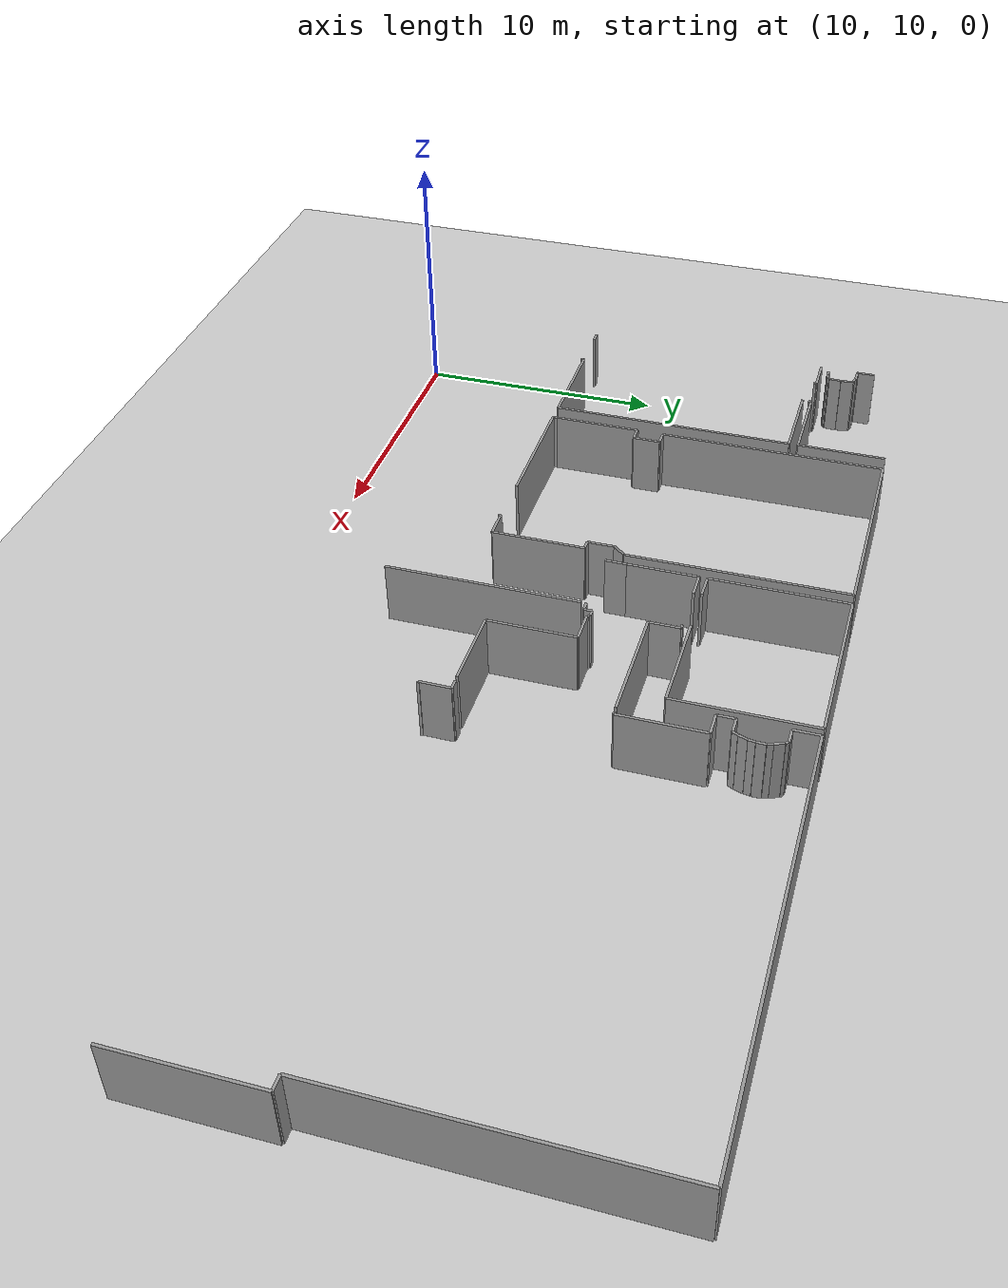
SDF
<sdf version="1.6">
 <world name="default">
  <model name="ground_plane">
   <static>1</static>
   <link name="link">
    <collision name="collision">
     <geometry><plane><normal>0 0 1</normal><size>100 100</size></plane></geometry>
     <surface><friction><ode><mu>100</mu><mu2>50</mu2></ode></friction></surface>
    </collision>
    <visual name="visual">
     <cast_shadows>0</cast_shadows>
     <geometry><plane><normal>0 0 1</normal><size>100 100</size></plane></geometry>
     <material>
      <script><uri>file://media/materials/scripts/gazebo.material</uri><name>Gazebo/Grey</name></script>
     </material>
    </visual>
   </link>
  </model>
  <model name="0510032267_A_40_1_101">
   <static>1</static>
   <link name="Wall_365">
    <collision name="Wall_365_Collision">
     <geometry><box><size>3.52461255949 0.1 2.5</size></box></geometry>
     <pose>1.76230627975 0 1.25 0 0 0</pose>
    </collision>
    <visual name="Wall_365_Visual">
     <pose>1.76230627975 0 1.25 0 0 0</pose>
     <geometry><box><size>3.52461255949 0.1 2.5</size></box></geometry>
     <material>
      <script><uri>file://media/materials/scripts/gazebo.material</uri><name>Gazebo/Grey</name></script>
      <ambient>1 1 1 1</ambient>
     </material>
    </visual>
    <pose>62.6338965173 -2.80215276498 0 0 0 -1.57079632679</pose>
   </link>
   <link name="Wall_366">
    <collision name="Wall_366_Collision">
     <geometry><box><size>3.27680313129 0.1 2.5</size></box></geometry>
     <pose>1.63840156565 0 1.25 0 0 0</pose>
    </collision>
    <visual name="Wall_366_Visual">
     <pose>1.63840156565 0 1.25 0 0 0</pose>
     <geometry><box><size>3.27680313129 0.1 2.5</size></box></geometry>
     <material>
      <script><uri>file://media/materials/scripts/gazebo.material</uri><name>Gazebo/Grey</name></script>
      <ambient>1 1 1 1</ambient>
     </material>
    </visual>
    <pose>62.6338965173 -6.32676532447 0 0 0 3.14159265359</pose>
   </link>
   <link name="Wall_367">
    <collision name="Wall_367_Collision">
     <geometry><box><size>0.0667179229757 0.1 2.5</size></box></geometry>
     <pose>0.0333589614879 0 1.25 0 0 0</pose>
    </collision>
    <visual name="Wall_367_Visual">
     <pose>0.0333589614879 0 1.25 0 0 0</pose>
     <geometry><box><size>0.0667179229757 0.1 2.5</size></box></geometry>
     <material>
      <script><uri>file://media/materials/scripts/gazebo.material</uri><name>Gazebo/Grey</name></script>
      <ambient>1 1 1 1</ambient>
     </material>
    </visual>
    <pose>59.357093386 -6.32676532447 0 0 0 -1.57079632679</pose>
   </link>
   <link name="Wall_368">
    <collision name="Wall_368_Collision">
     <geometry><box><size>0.10484245039 0.1 2.5</size></box></geometry>
     <pose>0.0524212251952 0 1.25 0 0 0</pose>
    </collision>
    <visual name="Wall_368_Visual">
     <pose>0.0524212251952 0 1.25 0 0 0</pose>
     <geometry><box><size>0.10484245039 0.1 2.5</size></box></geometry>
     <material>
      <script><uri>file://media/materials/scripts/gazebo.material</uri><name>Gazebo/Grey</name></script>
      <ambient>1 1 1 1</ambient>
     </material>
    </visual>
    <pose>59.357093386 -6.39348324745 0 0 0 3.14159265359</pose>
   </link>
   <link name="Wall_369">
    <collision name="Wall_369_Collision">
     <geometry><box><size>0.0996320983105 0.1 2.5</size></box></geometry>
     <pose>0.0498160491552 0 1.25 0 0 0</pose>
    </collision>
    <visual name="Wall_369_Visual">
     <pose>0.0498160491552 0 1.25 0 0 0</pose>
     <geometry><box><size>0.0996320983105 0.1 2.5</size></box></geometry>
     <material>
      <script><uri>file://media/materials/scripts/gazebo.material</uri><name>Gazebo/Grey</name></script>
      <ambient>1 1 1 1</ambient>
     </material>
    </visual>
    <pose>57.9051843003 -6.39348324745 0 0 0 3.14159265359</pose>
   </link>
   <link name="Wall_370">
    <collision name="Wall_370_Collision">
     <geometry><box><size>0.0620158979279 0.1 2.5</size></box></geometry>
     <pose>0.031007948964 0 1.25 0 0 0</pose>
    </collision>
    <visual name="Wall_370_Visual">
     <pose>0.031007948964 0 1.25 0 0 0</pose>
     <geometry><box><size>0.0620158979279 0.1 2.5</size></box></geometry>
     <material>
      <script><uri>file://media/materials/scripts/gazebo.material</uri><name>Gazebo/Grey</name></script>
      <ambient>1 1 1 1</ambient>
     </material>
    </visual>
    <pose>57.805552202 -6.39348324745 0 0 0 1.57079632679</pose>
   </link>
   <link name="Wall_371">
    <collision name="Wall_371_Collision">
     <geometry><box><size>1.30449424637 0.1 2.5</size></box></geometry>
     <pose>0.652247123187 0 1.25 0 0 0</pose>
    </collision>
    <visual name="Wall_371_Visual">
     <pose>0.652247123187 0 1.25 0 0 0</pose>
     <geometry><box><size>1.30449424637 0.1 2.5</size></box></geometry>
     <material>
      <script><uri>file://media/materials/scripts/gazebo.material</uri><name>Gazebo/Grey</name></script>
      <ambient>1 1 1 1</ambient>
     </material>
    </visual>
    <pose>57.805552202 -6.33146734952 0 0 0 3.14159265359</pose>
   </link>
   <link name="Wall_374">
    <collision name="Wall_374_Collision">
     <geometry><box><size>0.294956760432 0.1 2.5</size></box></geometry>
     <pose>0.147478380216 0 1.25 0 0 0</pose>
    </collision>
    <visual name="Wall_374_Visual">
     <pose>0.147478380216 0 1.25 0 0 0</pose>
     <geometry><box><size>0.294956760432 0.1 2.5</size></box></geometry>
     <material>
      <script><uri>file://media/materials/scripts/gazebo.material</uri><name>Gazebo/Grey</name></script>
      <ambient>1 1 1 1</ambient>
     </material>
    </visual>
    <pose>56.7378112709 -5.97424052764 0 0 0 0.0</pose>
   </link>
   <link name="Wall_375">
    <collision name="Wall_375_Collision">
     <geometry><box><size>0.232939059919 0.1 2.5</size></box></geometry>
     <pose>0.116469529959 0 1.25 0 0 0</pose>
    </collision>
    <visual name="Wall_375_Visual">
     <pose>0.116469529959 0 1.25 0 0 0</pose>
     <geometry><box><size>0.232939059919 0.1 2.5</size></box></geometry>
     <material>
      <script><uri>file://media/materials/scripts/gazebo.material</uri><name>Gazebo/Grey</name></script>
      <ambient>1 1 1 1</ambient>
     </material>
    </visual>
    <pose>57.0327680313 -5.97424052764 0 0 0 0.271180474725</pose>
   </link>
   <link name="Wall_376">
    <collision name="Wall_376_Collision">
     <geometry><box><size>0.0939939500341 0.1 2.5</size></box></geometry>
     <pose>0.0469969750171 0 1.25 0 0 0</pose>
    </collision>
    <visual name="Wall_376_Visual">
     <pose>0.0469969750171 0 1.25 0 0 0</pose>
     <geometry><box><size>0.0939939500341 0.1 2.5</size></box></geometry>
     <material>
      <script><uri>file://media/materials/scripts/gazebo.material</uri><name>Gazebo/Grey</name></script>
      <ambient>1 1 1 1</ambient>
     </material>
    </visual>
    <pose>57.257194416 -5.91184338444 0 0 0 0.785398163397</pose>
   </link>
   <link name="Wall_377">
    <collision name="Wall_377_Collision">
     <geometry><box><size>0.48958471186 0.1 2.5</size></box></geometry>
     <pose>0.24479235593 0 1.25 0 0 0</pose>
    </collision>
    <visual name="Wall_377_Visual">
     <pose>0.24479235593 0 1.25 0 0 0</pose>
     <geometry><box><size>0.48958471186 0.1 2.5</size></box></geometry>
     <material>
      <script><uri>file://media/materials/scripts/gazebo.material</uri><name>Gazebo/Grey</name></script>
      <ambient>1 1 1 1</ambient>
     </material>
    </visual>
    <pose>57.3236581755 -5.84537962498 0 0 0 1.51261971933</pose>
   </link>
   <link name="Wall_378">
    <collision name="Wall_378_Collision">
     <geometry><box><size>0.523349681508 0.1 2.5</size></box></geometry>
     <pose>0.261674840754 0 1.25 0 0 0</pose>
    </collision>
    <visual name="Wall_378_Visual">
     <pose>0.261674840754 0 1.25 0 0 0</pose>
     <geometry><box><size>0.523349681508 0.1 2.5</size></box></geometry>
     <material>
      <script><uri>file://media/materials/scripts/gazebo.material</uri><name>Gazebo/Grey</name></script>
      <ambient>1 1 1 1</ambient>
     </material>
    </visual>
    <pose>57.3521244893 -5.35662318353 0 0 0 1.68150717877</pose>
   </link>
   <link name="Wall_379">
    <collision name="Wall_379_Collision">
     <geometry><box><size>0.276862419191 0.1 2.5</size></box></geometry>
     <pose>0.138431209595 0 1.25 0 0 0</pose>
    </collision>
    <visual name="Wall_379_Visual">
     <pose>0.138431209595 0 1.25 0 0 0</pose>
     <geometry><box><size>0.276862419191 0.1 2.5</size></box></geometry>
     <material>
      <script><uri>file://media/materials/scripts/gazebo.material</uri><name>Gazebo/Grey</name></script>
      <ambient>1 1 1 1</ambient>
     </material>
    </visual>
    <pose>57.2943022894 -4.83647754783 0 0 0 2.87735348417</pose>
   </link>
   <link name="Wall_380">
    <collision name="Wall_380_Collision">
     <geometry><box><size>0.513042294101 0.1 2.5</size></box></geometry>
     <pose>0.25652114705 0 1.25 0 0 0</pose>
    </collision>
    <visual name="Wall_380_Visual">
     <pose>0.25652114705 0 1.25 0 0 0</pose>
     <geometry><box><size>0.513042294101 0.1 2.5</size></box></geometry>
     <material>
      <script><uri>file://media/materials/scripts/gazebo.material</uri><name>Gazebo/Grey</name></script>
      <ambient>1 1 1 1</ambient>
     </material>
    </visual>
    <pose>57.0270493522 -4.7641680275 0 0 0 -3.13440922501</pose>
   </link>
   <link name="Wall_381">
    <collision name="Wall_381_Collision">
     <geometry><box><size>0.740030085341 0.1 2.5</size></box></geometry>
     <pose>0.37001504267 0 1.25 0 0 0</pose>
    </collision>
    <visual name="Wall_381_Visual">
     <pose>0.37001504267 0 1.25 0 0 0</pose>
     <geometry><box><size>0.740030085341 0.1 2.5</size></box></geometry>
     <material>
      <script><uri>file://media/materials/scripts/gazebo.material</uri><name>Gazebo/Grey</name></script>
      <ambient>1 1 1 1</ambient>
     </material>
    </visual>
    <pose>56.514020295 -4.76785339848 0 0 0 1.58024134903</pose>
   </link>
   <link name="Wall_386">
    <collision name="Wall_386_Collision">
     <geometry><box><size>3.36792075182 0.1 2.5</size></box></geometry>
     <pose>1.68396037591 0 1.25 0 0 0</pose>
    </collision>
    <visual name="Wall_386_Visual">
     <pose>1.68396037591 0 1.25 0 0 0</pose>
     <geometry><box><size>3.36792075182 0.1 2.5</size></box></geometry>
     <material>
      <script><uri>file://media/materials/scripts/gazebo.material</uri><name>Gazebo/Grey</name></script>
      <ambient>1 1 1 1</ambient>
     </material>
    </visual>
    <pose>59.2702965453 -6.69148997007 0 0 0 0.0</pose>
   </link>
   <link name="Wall_387">
    <collision name="Wall_387_Collision">
     <geometry><box><size>9.73268352194 0.1 2.5</size></box></geometry>
     <pose>4.86634176097 0 1.25 0 0 0</pose>
    </collision>
    <visual name="Wall_387_Visual">
     <pose>4.86634176097 0 1.25 0 0 0</pose>
     <geometry><box><size>9.73268352194 0.1 2.5</size></box></geometry>
     <material>
      <script><uri>file://media/materials/scripts/gazebo.material</uri><name>Gazebo/Grey</name></script>
      <ambient>1 1 1 1</ambient>
     </material>
    </visual>
    <pose>62.6382172971 -6.69148997007 0 0 0 -1.57079632679</pose>
   </link>
   <link name="Wall_388">
    <collision name="Wall_388_Collision">
     <geometry><box><size>3.97689653639 0.1 2.5</size></box></geometry>
     <pose>1.98844826819 0 1.25 0 0 0</pose>
    </collision>
    <visual name="Wall_388_Visual">
     <pose>1.98844826819 0 1.25 0 0 0</pose>
     <geometry><box><size>3.97689653639 0.1 2.5</size></box></geometry>
     <material>
      <script><uri>file://media/materials/scripts/gazebo.material</uri><name>Gazebo/Grey</name></script>
      <ambient>1 1 1 1</ambient>
     </material>
    </visual>
    <pose>62.6382172971 -16.424173492 0 0 0 3.14159265359</pose>
   </link>
   <link name="Wall_389">
    <collision name="Wall_389_Collision">
     <geometry><box><size>0.122760978275 0.1 2.5</size></box></geometry>
     <pose>0.0613804891377 0 1.25 0 0 0</pose>
    </collision>
    <visual name="Wall_389_Visual">
     <pose>0.0613804891377 0 1.25 0 0 0</pose>
     <geometry><box><size>0.122760978275 0.1 2.5</size></box></geometry>
     <material>
      <script><uri>file://media/materials/scripts/gazebo.material</uri><name>Gazebo/Grey</name></script>
      <ambient>1 1 1 1</ambient>
     </material>
    </visual>
    <pose>58.6613207607 -16.424173492 0 0 0 -1.57079632679</pose>
   </link>
   <link name="Wall_393">
    <collision name="Wall_393_Collision">
     <geometry><box><size>0.401324191919 0.1 2.5</size></box></geometry>
     <pose>0.200662095959 0 1.25 0 0 0</pose>
    </collision>
    <visual name="Wall_393_Visual">
     <pose>0.200662095959 0 1.25 0 0 0</pose>
     <geometry><box><size>0.401324191919 0.1 2.5</size></box></geometry>
     <material>
      <script><uri>file://media/materials/scripts/gazebo.material</uri><name>Gazebo/Grey</name></script>
      <ambient>1 1 1 1</ambient>
     </material>
    </visual>
    <pose>56.9007300847 -16.4281130265 0 0 0 3.14159265359</pose>
   </link>
   <link name="Wall_395">
    <collision name="Wall_395_Collision">
     <geometry><box><size>3.43133454908 0.1 2.5</size></box></geometry>
     <pose>1.71566727454 0 1.25 0 0 0</pose>
    </collision>
    <visual name="Wall_395_Visual">
     <pose>1.71566727454 0 1.25 0 0 0</pose>
     <geometry><box><size>3.43133454908 0.1 2.5</size></box></geometry>
     <material>
      <script><uri>file://media/materials/scripts/gazebo.material</uri><name>Gazebo/Grey</name></script>
      <ambient>1 1 1 1</ambient>
     </material>
    </visual>
    <pose>63.3655061984 -16.2767586527 0 0 0 1.57079632679</pose>
   </link>
   <link name="Wall_396">
    <collision name="Wall_396_Collision">
     <geometry><box><size>0.571740829463 0.1 2.5</size></box></geometry>
     <pose>0.285870414731 0 1.25 0 0 0</pose>
    </collision>
    <visual name="Wall_396_Visual">
     <pose>0.285870414731 0 1.25 0 0 0</pose>
     <geometry><box><size>0.571740829463 0.1 2.5</size></box></geometry>
     <material>
      <script><uri>file://media/materials/scripts/gazebo.material</uri><name>Gazebo/Grey</name></script>
      <ambient>1 1 1 1</ambient>
     </material>
    </visual>
    <pose>63.3655061984 -12.8454241036 0 0 0 0.0</pose>
   </link>
   <link name="Wall_397">
    <collision name="Wall_397_Collision">
     <geometry><box><size>1.07587416364 0.1 2.5</size></box></geometry>
     <pose>0.537937081822 0 1.25 0 0 0</pose>
    </collision>
    <visual name="Wall_397_Visual">
     <pose>0.537937081822 0 1.25 0 0 0</pose>
     <geometry><box><size>1.07587416364 0.1 2.5</size></box></geometry>
     <material>
      <script><uri>file://media/materials/scripts/gazebo.material</uri><name>Gazebo/Grey</name></script>
      <ambient>1 1 1 1</ambient>
     </material>
    </visual>
    <pose>63.9372470279 -12.8454241036 0 0 0 1.57079632679</pose>
   </link>
   <link name="Wall_398">
    <collision name="Wall_398_Collision">
     <geometry><box><size>0.56081179827 0.1 2.5</size></box></geometry>
     <pose>0.280405899135 0 1.25 0 0 0</pose>
    </collision>
    <visual name="Wall_398_Visual">
     <pose>0.280405899135 0 1.25 0 0 0</pose>
     <geometry><box><size>0.56081179827 0.1 2.5</size></box></geometry>
     <material>
      <script><uri>file://media/materials/scripts/gazebo.material</uri><name>Gazebo/Grey</name></script>
      <ambient>1 1 1 1</ambient>
     </material>
    </visual>
    <pose>63.9372470279 -11.76954994 0 0 0 3.14159265359</pose>
   </link>
   <link name="Wall_399">
    <collision name="Wall_399_Collision">
     <geometry><box><size>8.967905502 0.1 2.5</size></box></geometry>
     <pose>4.483952751 0 1.25 0 0 0</pose>
    </collision>
    <visual name="Wall_399_Visual">
     <pose>4.483952751 0 1.25 0 0 0</pose>
     <geometry><box><size>8.967905502 0.1 2.5</size></box></geometry>
     <material>
      <script><uri>file://media/materials/scripts/gazebo.material</uri><name>Gazebo/Grey</name></script>
      <ambient>1 1 1 1</ambient>
     </material>
    </visual>
    <pose>63.3764352296 -11.76954994 0 0 0 1.57079632679</pose>
   </link>
   <link name="Wall_400">
    <collision name="Wall_400_Collision">
     <geometry><box><size>8.06600626513 0.1 2.5</size></box></geometry>
     <pose>4.03300313257 0 1.25 0 0 0</pose>
    </collision>
    <visual name="Wall_400_Visual">
     <pose>4.03300313257 0 1.25 0 0 0</pose>
     <geometry><box><size>8.06600626513 0.1 2.5</size></box></geometry>
     <material>
      <script><uri>file://media/materials/scripts/gazebo.material</uri><name>Gazebo/Grey</name></script>
      <ambient>1 1 1 1</ambient>
     </material>
    </visual>
    <pose>63.3764352296 -2.80164443795 0 0 0 0.0</pose>
   </link>
   <link name="Wall_401">
    <collision name="Wall_401_Collision">
     <geometry><box><size>8.52045063191 0.1 2.5</size></box></geometry>
     <pose>4.26022531596 0 1.25 0 0 0</pose>
    </collision>
    <visual name="Wall_401_Visual">
     <pose>4.26022531596 0 1.25 0 0 0</pose>
     <geometry><box><size>8.52045063191 0.1 2.5</size></box></geometry>
     <material>
      <script><uri>file://media/materials/scripts/gazebo.material</uri><name>Gazebo/Grey</name></script>
      <ambient>1 1 1 1</ambient>
     </material>
    </visual>
    <pose>71.4424414947 -2.80164443795 0 0 0 -1.57079632679</pose>
   </link>
   <link name="Wall_402">
    <collision name="Wall_402_Collision">
     <geometry><box><size>0.59601410911 0.1 2.5</size></box></geometry>
     <pose>0.298007054555 0 1.25 0 0 0</pose>
    </collision>
    <visual name="Wall_402_Visual">
     <pose>0.298007054555 0 1.25 0 0 0</pose>
     <geometry><box><size>0.59601410911 0.1 2.5</size></box></geometry>
     <material>
      <script><uri>file://media/materials/scripts/gazebo.material</uri><name>Gazebo/Grey</name></script>
      <ambient>1 1 1 1</ambient>
     </material>
    </visual>
    <pose>71.4424414947 -11.3220950699 0 0 0 -2.23877746522</pose>
   </link>
   <link name="Wall_403">
    <collision name="Wall_403_Collision">
     <geometry><box><size>1.04448496941 0.1 2.5</size></box></geometry>
     <pose>0.522242484703 0 1.25 0 0 0</pose>
    </collision>
    <visual name="Wall_403_Visual">
     <pose>0.522242484703 0 1.25 0 0 0</pose>
     <geometry><box><size>1.04448496941 0.1 2.5</size></box></geometry>
     <material>
      <script><uri>file://media/materials/scripts/gazebo.material</uri><name>Gazebo/Grey</name></script>
      <ambient>1 1 1 1</ambient>
     </material>
    </visual>
    <pose>71.0732689876 -11.790010103 0 0 0 -1.57079632679</pose>
   </link>
   <link name="Wall_404">
    <collision name="Wall_404_Collision">
     <geometry><box><size>0.384422318098 0.1 2.5</size></box></geometry>
     <pose>0.192211159049 0 1.25 0 0 0</pose>
    </collision>
    <visual name="Wall_404_Visual">
     <pose>0.192211159049 0 1.25 0 0 0</pose>
     <geometry><box><size>0.384422318098 0.1 2.5</size></box></geometry>
     <material>
      <script><uri>file://media/materials/scripts/gazebo.material</uri><name>Gazebo/Grey</name></script>
      <ambient>1 1 1 1</ambient>
     </material>
    </visual>
    <pose>71.0732689876 -12.8344950724 0 0 0 0.0</pose>
   </link>
   <link name="Wall_405">
    <collision name="Wall_405_Collision">
     <geometry><box><size>3.61369687188 0.1 2.5</size></box></geometry>
     <pose>1.80684843594 0 1.25 0 0 0</pose>
    </collision>
    <visual name="Wall_405_Visual">
     <pose>1.80684843594 0 1.25 0 0 0</pose>
     <geometry><box><size>3.61369687188 0.1 2.5</size></box></geometry>
     <material>
      <script><uri>file://media/materials/scripts/gazebo.material</uri><name>Gazebo/Grey</name></script>
      <ambient>1 1 1 1</ambient>
     </material>
    </visual>
    <pose>71.4576913057 -12.8344950724 0 0 0 -1.57079632679</pose>
   </link>
   <link name="Wall_406">
    <collision name="Wall_406_Collision">
     <geometry><box><size>1.06913883047 0.1 2.5</size></box></geometry>
     <pose>0.534569415233 0 1.25 0 0 0</pose>
    </collision>
    <visual name="Wall_406_Visual">
     <pose>0.534569415233 0 1.25 0 0 0</pose>
     <geometry><box><size>1.06913883047 0.1 2.5</size></box></geometry>
     <material>
      <script><uri>file://media/materials/scripts/gazebo.material</uri><name>Gazebo/Grey</name></script>
      <ambient>1 1 1 1</ambient>
     </material>
    </visual>
    <pose>71.4576913057 -16.4481919443 0 0 0 3.14159265359</pose>
   </link>
   <link name="Wall_407">
    <collision name="Wall_407_Collision">
     <geometry><box><size>0.107129922035 0.1 2.5</size></box></geometry>
     <pose>0.0535649610177 0 1.25 0 0 0</pose>
    </collision>
    <visual name="Wall_407_Visual">
     <pose>0.0535649610177 0 1.25 0 0 0</pose>
     <geometry><box><size>0.107129922035 0.1 2.5</size></box></geometry>
     <material>
      <script><uri>file://media/materials/scripts/gazebo.material</uri><name>Gazebo/Grey</name></script>
      <ambient>1 1 1 1</ambient>
     </material>
    </visual>
    <pose>70.3885524752 -16.4481919443 0 0 0 -1.57079632679</pose>
   </link>
   <link name="Wall_411">
    <collision name="Wall_411_Collision">
     <geometry><box><size>5.06535179408 0.1 2.5</size></box></geometry>
     <pose>2.53267589704 0 1.25 0 0 0</pose>
    </collision>
    <visual name="Wall_411_Visual">
     <pose>2.53267589704 0 1.25 0 0 0</pose>
     <geometry><box><size>5.06535179408 0.1 2.5</size></box></geometry>
     <material>
      <script><uri>file://media/materials/scripts/gazebo.material</uri><name>Gazebo/Grey</name></script>
      <ambient>1 1 1 1</ambient>
     </material>
    </visual>
    <pose>68.431620483 -16.4361191773 0 0 0 3.14159265359</pose>
   </link>
   <link name="Wall_412">
    <collision name="Wall_412_Collision">
     <geometry><box><size>0.159362348723 0.1 2.5</size></box></geometry>
     <pose>0.0796811743616 0 1.25 0 0 0</pose>
    </collision>
    <visual name="Wall_412_Visual">
     <pose>0.0796811743616 0 1.25 0 0 0</pose>
     <geometry><box><size>0.159362348723 0.1 2.5</size></box></geometry>
     <material>
      <script><uri>file://media/materials/scripts/gazebo.material</uri><name>Gazebo/Grey</name></script>
      <ambient>1 1 1 1</ambient>
     </material>
    </visual>
    <pose>63.366268689 -16.4361191773 0 0 0 1.57558097928</pose>
   </link>
   <link name="Wall_509">
    <collision name="Wall_509_Collision">
     <geometry><box><size>2.71777047764 0.1 2.5</size></box></geometry>
     <pose>1.35888523882 0 1.25 0 0 0</pose>
    </collision>
    <visual name="Wall_509_Visual">
     <pose>1.35888523882 0 1.25 0 0 0</pose>
     <geometry><box><size>2.71777047764 0.1 2.5</size></box></geometry>
     <material>
      <script><uri>file://media/materials/scripts/gazebo.material</uri><name>Gazebo/Grey</name></script>
      <ambient>1 1 1 1</ambient>
     </material>
    </visual>
    <pose>71.9561059608 -11.0972874399 0 0 0 1.57079632679</pose>
   </link>
   <link name="Wall_510">
    <collision name="Wall_510_Collision">
     <geometry><box><size>0.979419109284 0.1 2.5</size></box></geometry>
     <pose>0.489709554642 0 1.25 0 0 0</pose>
    </collision>
    <visual name="Wall_510_Visual">
     <pose>0.489709554642 0 1.25 0 0 0</pose>
     <geometry><box><size>0.979419109284 0.1 2.5</size></box></geometry>
     <material>
      <script><uri>file://media/materials/scripts/gazebo.material</uri><name>Gazebo/Grey</name></script>
      <ambient>1 1 1 1</ambient>
     </material>
    </visual>
    <pose>71.9561059608 -8.37951696224 0 0 0 0.0</pose>
   </link>
   <link name="Wall_511">
    <collision name="Wall_511_Collision">
     <geometry><box><size>0.172195782156 0.1 2.5</size></box></geometry>
     <pose>0.0860978910782 0 1.25 0 0 0</pose>
    </collision>
    <visual name="Wall_511_Visual">
     <pose>0.0860978910782 0 1.25 0 0 0</pose>
     <geometry><box><size>0.172195782156 0.1 2.5</size></box></geometry>
     <material>
      <script><uri>file://media/materials/scripts/gazebo.material</uri><name>Gazebo/Grey</name></script>
      <ambient>1 1 1 1</ambient>
     </material>
    </visual>
    <pose>74.7144155192 -8.37951696224 0 0 0 0.0</pose>
   </link>
   <link name="Wall_512">
    <collision name="Wall_512_Collision">
     <geometry><box><size>1.19088315468 0.1 2.5</size></box></geometry>
     <pose>0.595441577339 0 1.25 0 0 0</pose>
    </collision>
    <visual name="Wall_512_Visual">
     <pose>0.595441577339 0 1.25 0 0 0</pose>
     <geometry><box><size>1.19088315468 0.1 2.5</size></box></geometry>
     <material>
      <script><uri>file://media/materials/scripts/gazebo.material</uri><name>Gazebo/Grey</name></script>
      <ambient>1 1 1 1</ambient>
     </material>
    </visual>
    <pose>74.8866113014 -8.37951696224 0 0 0 -1.57079632679</pose>
   </link>
   <link name="Wall_513">
    <collision name="Wall_513_Collision">
     <geometry><box><size>4.47531119146 0.1 2.5</size></box></geometry>
     <pose>2.23765559573 0 1.25 0 0 0</pose>
    </collision>
    <visual name="Wall_513_Visual">
     <pose>2.23765559573 0 1.25 0 0 0</pose>
     <geometry><box><size>4.47531119146 0.1 2.5</size></box></geometry>
     <material>
      <script><uri>file://media/materials/scripts/gazebo.material</uri><name>Gazebo/Grey</name></script>
      <ambient>1 1 1 1</ambient>
     </material>
    </visual>
    <pose>74.8866113014 -9.57040011692 0 0 0 0.0</pose>
   </link>
   <link name="Wall_514">
    <collision name="Wall_514_Collision">
     <geometry><box><size>3.02391043278 0.1 2.5</size></box></geometry>
     <pose>1.51195521639 0 1.25 0 0 0</pose>
    </collision>
    <visual name="Wall_514_Visual">
     <pose>1.51195521639 0 1.25 0 0 0</pose>
     <geometry><box><size>3.02391043278 0.1 2.5</size></box></geometry>
     <material>
      <script><uri>file://media/materials/scripts/gazebo.material</uri><name>Gazebo/Grey</name></script>
      <ambient>1 1 1 1</ambient>
     </material>
    </visual>
    <pose>79.3619224928 -15.1073523151 0 0 0 3.14159265359</pose>
   </link>
   <link name="Wall_515">
    <collision name="Wall_515_Collision">
     <geometry><box><size>3.38418721685 0.1 2.5</size></box></geometry>
     <pose>1.69209360842 0 1.25 0 0 0</pose>
    </collision>
    <visual name="Wall_515_Visual">
     <pose>1.69209360842 0 1.25 0 0 0</pose>
     <geometry><box><size>3.38418721685 0.1 2.5</size></box></geometry>
     <material>
      <script><uri>file://media/materials/scripts/gazebo.material</uri><name>Gazebo/Grey</name></script>
      <ambient>1 1 1 1</ambient>
     </material>
    </visual>
    <pose>76.3380120601 -15.1073523151 0 0 0 1.57079632679</pose>
   </link>
   <link name="Wall_516">
    <collision name="Wall_516_Collision">
     <geometry><box><size>1.18973941886 0.1 2.5</size></box></geometry>
     <pose>0.594869709428 0 1.25 0 0 0</pose>
    </collision>
    <visual name="Wall_516_Visual">
     <pose>0.594869709428 0 1.25 0 0 0</pose>
     <geometry><box><size>1.18973941886 0.1 2.5</size></box></geometry>
     <material>
      <script><uri>file://media/materials/scripts/gazebo.material</uri><name>Gazebo/Grey</name></script>
      <ambient>1 1 1 1</ambient>
     </material>
    </visual>
    <pose>76.3380120601 -11.7231650983 0 0 0 3.14159265359</pose>
   </link>
   <link name="Wall_517">
    <collision name="Wall_517_Collision">
     <geometry><box><size>0.10357163281 0.1 2.5</size></box></geometry>
     <pose>0.051785816405 0 1.25 0 0 0</pose>
    </collision>
    <visual name="Wall_517_Visual">
     <pose>0.051785816405 0 1.25 0 0 0</pose>
     <geometry><box><size>0.10357163281 0.1 2.5</size></box></geometry>
     <material>
      <script><uri>file://media/materials/scripts/gazebo.material</uri><name>Gazebo/Grey</name></script>
      <ambient>1 1 1 1</ambient>
     </material>
    </visual>
    <pose>75.1482726412 -11.7231650983 0 0 0 1.57079632679</pose>
   </link>
   <link name="Wall_518">
    <collision name="Wall_518_Collision">
     <geometry><box><size>0.307664936237 0.1 2.5</size></box></geometry>
     <pose>0.153832468118 0 1.25 0 0 0</pose>
    </collision>
    <visual name="Wall_518_Visual">
     <pose>0.153832468118 0 1.25 0 0 0</pose>
     <geometry><box><size>0.307664936237 0.1 2.5</size></box></geometry>
     <material>
      <script><uri>file://media/materials/scripts/gazebo.material</uri><name>Gazebo/Grey</name></script>
      <ambient>1 1 1 1</ambient>
     </material>
    </visual>
    <pose>75.1482726412 -11.6195934655 0 0 0 3.14159265359</pose>
   </link>
   <link name="Wall_519">
    <collision name="Wall_519_Collision">
     <geometry><box><size>0.307664936237 0.1 2.5</size></box></geometry>
     <pose>0.153832468118 0 1.25 0 0 0</pose>
    </collision>
    <visual name="Wall_519_Visual">
     <pose>0.153832468118 0 1.25 0 0 0</pose>
     <geometry><box><size>0.307664936237 0.1 2.5</size></box></geometry>
     <material>
      <script><uri>file://media/materials/scripts/gazebo.material</uri><name>Gazebo/Grey</name></script>
      <ambient>1 1 1 1</ambient>
     </material>
    </visual>
    <pose>74.840607705 -11.6195934655 0 0 0 -1.57079632679</pose>
   </link>
   <link name="Wall_520">
    <collision name="Wall_520_Collision">
     <geometry><box><size>0.351635224522 0.1 2.5</size></box></geometry>
     <pose>0.175817612261 0 1.25 0 0 0</pose>
    </collision>
    <visual name="Wall_520_Visual">
     <pose>0.175817612261 0 1.25 0 0 0</pose>
     <geometry><box><size>0.351635224522 0.1 2.5</size></box></geometry>
     <material>
      <script><uri>file://media/materials/scripts/gazebo.material</uri><name>Gazebo/Grey</name></script>
      <ambient>1 1 1 1</ambient>
     </material>
    </visual>
    <pose>74.840607705 -11.9272584017 0 0 0 3.14159265359</pose>
   </link>
   <link name="Wall_521">
    <collision name="Wall_521_Collision">
     <geometry><box><size>0.82999528426 0.1 2.5</size></box></geometry>
     <pose>0.41499764213 0 1.25 0 0 0</pose>
    </collision>
    <visual name="Wall_521_Visual">
     <pose>0.41499764213 0 1.25 0 0 0</pose>
     <geometry><box><size>0.82999528426 0.1 2.5</size></box></geometry>
     <material>
      <script><uri>file://media/materials/scripts/gazebo.material</uri><name>Gazebo/Grey</name></script>
      <ambient>1 1 1 1</ambient>
     </material>
    </visual>
    <pose>71.9497518729 -11.9272584017 0 0 0 1.56314068092</pose>
   </link>
   <link name="Wall_532">
    <collision name="Wall_532_Collision">
     <geometry><box><size>0.0748511554909 0.1 2.5</size></box></geometry>
     <pose>0.0374255777454 0 1.25 0 0 0</pose>
    </collision>
    <visual name="Wall_532_Visual">
     <pose>0.0374255777454 0 1.25 0 0 0</pose>
     <geometry><box><size>0.0748511554909 0.1 2.5</size></box></geometry>
     <material>
      <script><uri>file://media/materials/scripts/gazebo.material</uri><name>Gazebo/Grey</name></script>
      <ambient>1 1 1 1</ambient>
     </material>
    </visual>
    <pose>80.0228747164 -16.2810794325 0 0 0 3.14159265359</pose>
   </link>
   <link name="Wall_533">
    <collision name="Wall_533_Collision">
     <geometry><box><size>1.188087356 0.1 2.5</size></box></geometry>
     <pose>0.594043678 0 1.25 0 0 0</pose>
    </collision>
    <visual name="Wall_533_Visual">
     <pose>0.594043678 0 1.25 0 0 0</pose>
     <geometry><box><size>1.188087356 0.1 2.5</size></box></geometry>
     <material>
      <script><uri>file://media/materials/scripts/gazebo.material</uri><name>Gazebo/Grey</name></script>
      <ambient>1 1 1 1</ambient>
     </material>
    </visual>
    <pose>79.948023561 -16.2810794325 0 0 0 1.57079632679</pose>
   </link>
   <link name="Wall_534">
    <collision name="Wall_534_Collision">
     <geometry><box><size>0.369680834165 0.1 2.5</size></box></geometry>
     <pose>0.184840417082 0 1.25 0 0 0</pose>
    </collision>
    <visual name="Wall_534_Visual">
     <pose>0.184840417082 0 1.25 0 0 0</pose>
     <geometry><box><size>0.369680834165 0.1 2.5</size></box></geometry>
     <material>
      <script><uri>file://media/materials/scripts/gazebo.material</uri><name>Gazebo/Grey</name></script>
      <ambient>1 1 1 1</ambient>
     </material>
    </visual>
    <pose>79.948023561 -15.0929920765 0 0 0 3.14159265359</pose>
   </link>
   <link name="Wall_535">
    <collision name="Wall_535_Collision">
     <geometry><box><size>0.0917530293114 0.1 2.5</size></box></geometry>
     <pose>0.0458765146557 0 1.25 0 0 0</pose>
    </collision>
    <visual name="Wall_535_Visual">
     <pose>0.0458765146557 0 1.25 0 0 0</pose>
     <geometry><box><size>0.0917530293114 0.1 2.5</size></box></geometry>
     <material>
      <script><uri>file://media/materials/scripts/gazebo.material</uri><name>Gazebo/Grey</name></script>
      <ambient>1 1 1 1</ambient>
     </material>
    </visual>
    <pose>79.5783427268 -9.55820026814 0 0 0 0.0</pose>
   </link>
   <link name="Wall_536">
    <collision name="Wall_536_Collision">
     <geometry><box><size>3.2349932329 0.1 2.5</size></box></geometry>
     <pose>1.61749661645 0 1.25 0 0 0</pose>
    </collision>
    <visual name="Wall_536_Visual">
     <pose>1.61749661645 0 1.25 0 0 0</pose>
     <geometry><box><size>3.2349932329 0.1 2.5</size></box></geometry>
     <material>
      <script><uri>file://media/materials/scripts/gazebo.material</uri><name>Gazebo/Grey</name></script>
      <ambient>1 1 1 1</ambient>
     </material>
    </visual>
    <pose>79.6700957561 -9.55820026814 0 0 0 1.57079632679</pose>
   </link>
   <link name="Wall_537">
    <collision name="Wall_537_Collision">
     <geometry><box><size>0.876864130538 0.1 2.5</size></box></geometry>
     <pose>0.438432065269 0 1.25 0 0 0</pose>
    </collision>
    <visual name="Wall_537_Visual">
     <pose>0.438432065269 0 1.25 0 0 0</pose>
     <geometry><box><size>0.876864130538 0.1 2.5</size></box></geometry>
     <material>
      <script><uri>file://media/materials/scripts/gazebo.material</uri><name>Gazebo/Grey</name></script>
      <ambient>1 1 1 1</ambient>
     </material>
    </visual>
    <pose>79.6700957561 -6.32320703525 0 0 0 3.14159265359</pose>
   </link>
   <link name="Wall_538">
    <collision name="Wall_538_Collision">
     <geometry><box><size>0.685479002917 0.1 2.5</size></box></geometry>
     <pose>0.342739501458 0 1.25 0 0 0</pose>
    </collision>
    <visual name="Wall_538_Visual">
     <pose>0.342739501458 0 1.25 0 0 0</pose>
     <geometry><box><size>0.685479002917 0.1 2.5</size></box></geometry>
     <material>
      <script><uri>file://media/materials/scripts/gazebo.material</uri><name>Gazebo/Grey</name></script>
      <ambient>1 1 1 1</ambient>
     </material>
    </visual>
    <pose>78.7932316256 -6.32320703525 0 0 0 1.57079632679</pose>
   </link>
   <link name="Wall_539">
    <collision name="Wall_539_Collision">
     <geometry><box><size>0.610627847426 0.1 2.5</size></box></geometry>
     <pose>0.305313923713 0 1.25 0 0 0</pose>
    </collision>
    <visual name="Wall_539_Visual">
     <pose>0.305313923713 0 1.25 0 0 0</pose>
     <geometry><box><size>0.610627847426 0.1 2.5</size></box></geometry>
     <material>
      <script><uri>file://media/materials/scripts/gazebo.material</uri><name>Gazebo/Grey</name></script>
      <ambient>1 1 1 1</ambient>
     </material>
    </visual>
    <pose>78.7932316256 -5.63772803233 0 0 0 0.0</pose>
   </link>
   <link name="Wall_540">
    <collision name="Wall_540_Collision">
     <geometry><box><size>0.245344326453 0.1 2.5</size></box></geometry>
     <pose>0.122672163227 0 1.25 0 0 0</pose>
    </collision>
    <visual name="Wall_540_Visual">
     <pose>0.122672163227 0 1.25 0 0 0</pose>
     <geometry><box><size>0.245344326453 0.1 2.5</size></box></geometry>
     <material>
      <script><uri>file://media/materials/scripts/gazebo.material</uri><name>Gazebo/Grey</name></script>
      <ambient>1 1 1 1</ambient>
     </material>
    </visual>
    <pose>79.403859473 -5.63772803233 0 0 0 1.0770303657</pose>
   </link>
   <link name="Wall_541">
    <collision name="Wall_541_Collision">
     <geometry><box><size>0.35741981105 0.1 2.5</size></box></geometry>
     <pose>0.178709905525 0 1.25 0 0 0</pose>
    </collision>
    <visual name="Wall_541_Visual">
     <pose>0.178709905525 0 1.25 0 0 0</pose>
     <geometry><box><size>0.35741981105 0.1 2.5</size></box></geometry>
     <material>
      <script><uri>file://media/materials/scripts/gazebo.material</uri><name>Gazebo/Grey</name></script>
      <ambient>1 1 1 1</ambient>
     </material>
    </visual>
    <pose>79.5201392816 -5.42168904365 0 0 0 1.26377539411</pose>
   </link>
   <link name="Wall_542">
    <collision name="Wall_542_Collision">
     <geometry><box><size>0.265630697338 0.1 2.5</size></box></geometry>
     <pose>0.132815348669 0 1.25 0 0 0</pose>
    </collision>
    <visual name="Wall_542_Visual">
     <pose>0.132815348669 0 1.25 0 0 0</pose>
     <geometry><box><size>0.265630697338 0.1 2.5</size></box></geometry>
     <material>
      <script><uri>file://media/materials/scripts/gazebo.material</uri><name>Gazebo/Grey</name></script>
      <ambient>1 1 1 1</ambient>
     </material>
    </visual>
    <pose>79.6281587759 -5.08098285032 0 0 0 1.39770381774</pose>
   </link>
   <link name="Wall_543">
    <collision name="Wall_543_Collision">
     <geometry><box><size>0.348991705534 0.1 2.5</size></box></geometry>
     <pose>0.174495852767 0 1.25 0 0 0</pose>
    </collision>
    <visual name="Wall_543_Visual">
     <pose>0.174495852767 0 1.25 0 0 0</pose>
     <geometry><box><size>0.348991705534 0.1 2.5</size></box></geometry>
     <material>
      <script><uri>file://media/materials/scripts/gazebo.material</uri><name>Gazebo/Grey</name></script>
      <ambient>1 1 1 1</ambient>
     </material>
    </visual>
    <pose>79.6739082088 -4.81932151049 0 0 0 1.5828132283</pose>
   </link>
   <link name="Wall_544">
    <collision name="Wall_544_Collision">
     <geometry><box><size>0.223317942573 0.1 2.5</size></box></geometry>
     <pose>0.111658971286 0 1.25 0 0 0</pose>
    </collision>
    <visual name="Wall_544_Visual">
     <pose>0.111658971286 0 1.25 0 0 0</pose>
     <geometry><box><size>0.223317942573 0.1 2.5</size></box></geometry>
     <material>
      <script><uri>file://media/materials/scripts/gazebo.material</uri><name>Gazebo/Grey</name></script>
      <ambient>1 1 1 1</ambient>
     </material>
    </visual>
    <pose>79.6697145108 -4.47035500289 0 0 0 1.8927268344</pose>
   </link>
   <link name="Wall_545">
    <collision name="Wall_545_Collision">
     <geometry><box><size>0.380336870516 0.1 2.5</size></box></geometry>
     <pose>0.190168435258 0 1.25 0 0 0</pose>
    </collision>
    <visual name="Wall_545_Visual">
     <pose>0.190168435258 0 1.25 0 0 0</pose>
     <geometry><box><size>0.380336870516 0.1 2.5</size></box></geometry>
     <material>
      <script><uri>file://media/materials/scripts/gazebo.material</uri><name>Gazebo/Grey</name></script>
      <ambient>1 1 1 1</ambient>
     </material>
    </visual>
    <pose>79.5990570534 -4.25850971222 0 0 0 1.95111656505</pose>
   </link>
   <link name="Wall_546">
    <collision name="Wall_546_Collision">
     <geometry><box><size>0.126829186228 0.1 2.5</size></box></geometry>
     <pose>0.0634145931142 0 1.25 0 0 0</pose>
    </collision>
    <visual name="Wall_546_Visual">
     <pose>0.0634145931142 0 1.25 0 0 0</pose>
     <geometry><box><size>0.126829186228 0.1 2.5</size></box></geometry>
     <material>
      <script><uri>file://media/materials/scripts/gazebo.material</uri><name>Gazebo/Grey</name></script>
      <ambient>1 1 1 1</ambient>
     </material>
    </visual>
    <pose>79.4578692202 -3.90534950661 0 0 0 2.12238566668</pose>
   </link>
   <link name="Wall_547">
    <collision name="Wall_547_Collision">
     <geometry><box><size>0.594107218879 0.1 2.5</size></box></geometry>
     <pose>0.29705360944 0 1.25 0 0 0</pose>
    </collision>
    <visual name="Wall_547_Visual">
     <pose>0.29705360944 0 1.25 0 0 0</pose>
     <geometry><box><size>0.594107218879 0.1 2.5</size></box></geometry>
     <material>
      <script><uri>file://media/materials/scripts/gazebo.material</uri><name>Gazebo/Grey</name></script>
      <ambient>1 1 1 1</ambient>
     </material>
    </visual>
    <pose>79.3914054607 -3.79733001226 0 0 0 3.14159265359</pose>
   </link>
   <link name="Wall_548">
    <collision name="Wall_548_Collision">
     <geometry><box><size>0.991110631024 0.1 2.5</size></box></geometry>
     <pose>0.495555315512 0 1.25 0 0 0</pose>
    </collision>
    <visual name="Wall_548_Visual">
     <pose>0.495555315512 0 1.25 0 0 0</pose>
     <geometry><box><size>0.991110631024 0.1 2.5</size></box></geometry>
     <material>
      <script><uri>file://media/materials/scripts/gazebo.material</uri><name>Gazebo/Grey</name></script>
      <ambient>1 1 1 1</ambient>
     </material>
    </visual>
    <pose>78.7972982418 -3.79733001226 0 0 0 1.57079632679</pose>
   </link>
   <link name="Wall_549">
    <collision name="Wall_549_Collision">
     <geometry><box><size>16.28235025 0.1 2.5</size></box></geometry>
     <pose>8.14117512502 0 1.25 0 0 0</pose>
    </collision>
    <visual name="Wall_549_Visual">
     <pose>8.14117512502 0 1.25 0 0 0</pose>
     <geometry><box><size>16.28235025 0.1 2.5</size></box></geometry>
     <material>
      <script><uri>file://media/materials/scripts/gazebo.material</uri><name>Gazebo/Grey</name></script>
      <ambient>1 1 1 1</ambient>
     </material>
    </visual>
    <pose>78.7972982418 -2.80621938124 0 0 0 0.0</pose>
   </link>
   <link name="Wall_550">
    <collision name="Wall_550_Collision">
     <geometry><box><size>11.7529022296 0.1 2.5</size></box></geometry>
     <pose>5.87645111482 0 1.25 0 0 0</pose>
    </collision>
    <visual name="Wall_550_Visual">
     <pose>5.87645111482 0 1.25 0 0 0</pose>
     <geometry><box><size>11.7529022296 0.1 2.5</size></box></geometry>
     <material>
      <script><uri>file://media/materials/scripts/gazebo.material</uri><name>Gazebo/Grey</name></script>
      <ambient>1 1 1 1</ambient>
     </material>
    </visual>
    <pose>95.0796484919 -2.80621938124 0 0 0 -1.57079632679</pose>
   </link>
   <link name="Wall_551">
    <collision name="Wall_551_Collision">
     <geometry><box><size>0.528914277 0.1 2.5</size></box></geometry>
     <pose>0.2644571385 0 1.25 0 0 0</pose>
    </collision>
    <visual name="Wall_551_Visual">
     <pose>0.2644571385 0 1.25 0 0 0</pose>
     <geometry><box><size>0.528914277 0.1 2.5</size></box></geometry>
     <material>
      <script><uri>file://media/materials/scripts/gazebo.material</uri><name>Gazebo/Grey</name></script>
      <ambient>1 1 1 1</ambient>
     </material>
    </visual>
    <pose>95.0796484919 -14.5591216109 0 0 0 0.0</pose>
   </link>
   <link name="Wall_552">
    <collision name="Wall_552_Collision">
     <geometry><box><size>5.23271846943 0.1 2.5</size></box></geometry>
     <pose>2.61635923471 0 1.25 0 0 0</pose>
    </collision>
    <visual name="Wall_552_Visual">
     <pose>2.61635923471 0 1.25 0 0 0</pose>
     <geometry><box><size>5.23271846943 0.1 2.5</size></box></geometry>
     <material>
      <script><uri>file://media/materials/scripts/gazebo.material</uri><name>Gazebo/Grey</name></script>
      <ambient>1 1 1 1</ambient>
     </material>
    </visual>
    <pose>95.6085627689 -14.5591216109 0 0 0 -1.57079632679</pose>
   </link>
   <link name="Wall_554">
    <collision name="Wall_554_Collision">
     <geometry><box><size>5.26995342454 0.1 2.5</size></box></geometry>
     <pose>2.63497671227 0 1.25 0 0 0</pose>
    </collision>
    <visual name="Wall_554_Visual">
     <pose>2.63497671227 0 1.25 0 0 0</pose>
     <geometry><box><size>5.26995342454 0.1 2.5</size></box></geometry>
     <material>
      <script><uri>file://media/materials/scripts/gazebo.material</uri><name>Gazebo/Grey</name></script>
      <ambient>1 1 1 1</ambient>
     </material>
    </visual>
    <pose>71.9561059608 -8.06079591305 0 0 0 1.57079632679</pose>
   </link>
   <link name="Wall_555">
    <collision name="Wall_555_Collision">
     <geometry><box><size>6.51217760947 0.1 2.5</size></box></geometry>
     <pose>3.25608880473 0 1.25 0 0 0</pose>
    </collision>
    <visual name="Wall_555_Visual">
     <pose>3.25608880473 0 1.25 0 0 0</pose>
     <geometry><box><size>6.51217760947 0.1 2.5</size></box></geometry>
     <material>
      <script><uri>file://media/materials/scripts/gazebo.material</uri><name>Gazebo/Grey</name></script>
      <ambient>1 1 1 1</ambient>
     </material>
    </visual>
    <pose>71.9561059608 -2.79084248851 0 0 0 0.0</pose>
   </link>
   <link name="Wall_556">
    <collision name="Wall_556_Collision">
     <geometry><box><size>5.28914277 0.1 2.5</size></box></geometry>
     <pose>2.644571385 0 1.25 0 0 0</pose>
    </collision>
    <visual name="Wall_556_Visual">
     <pose>2.644571385 0 1.25 0 0 0</pose>
     <geometry><box><size>5.28914277 0.1 2.5</size></box></geometry>
     <material>
      <script><uri>file://media/materials/scripts/gazebo.material</uri><name>Gazebo/Grey</name></script>
      <ambient>1 1 1 1</ambient>
     </material>
    </visual>
    <pose>78.4682835702 -2.79084248851 0 0 0 -1.57079632679</pose>
   </link>
   <link name="Wall_557">
    <collision name="Wall_557_Collision">
     <geometry><box><size>3.79288215073 0.1 2.5</size></box></geometry>
     <pose>1.89644107537 0 1.25 0 0 0</pose>
    </collision>
    <visual name="Wall_557_Visual">
     <pose>1.89644107537 0 1.25 0 0 0</pose>
     <geometry><box><size>3.79288215073 0.1 2.5</size></box></geometry>
     <material>
      <script><uri>file://media/materials/scripts/gazebo.material</uri><name>Gazebo/Grey</name></script>
      <ambient>1 1 1 1</ambient>
     </material>
    </visual>
    <pose>78.4682835702 -8.07998525852 0 0 0 3.14159265359</pose>
   </link>
   <link name="Wall_558">
    <collision name="Wall_558_Collision">
     <geometry><box><size>0.932342192511 0.1 2.5</size></box></geometry>
     <pose>0.466171096255 0 1.25 0 0 0</pose>
    </collision>
    <visual name="Wall_558_Visual">
     <pose>0.466171096255 0 1.25 0 0 0</pose>
     <geometry><box><size>0.932342192511 0.1 2.5</size></box></geometry>
     <material>
      <script><uri>file://media/materials/scripts/gazebo.material</uri><name>Gazebo/Grey</name></script>
      <ambient>1 1 1 1</ambient>
     </material>
    </visual>
    <pose>72.8882506561 -8.07998525852 0 0 0 3.12100933055</pose>
   </link>
   <link name="Wall_566">
    <collision name="Wall_566_Collision">
     <geometry><box><size>7.46376581374 0.1 2.5</size></box></geometry>
     <pose>3.73188290687 0 1.25 0 0 0</pose>
    </collision>
    <visual name="Wall_566_Visual">
     <pose>3.73188290687 0 1.25 0 0 0</pose>
     <geometry><box><size>7.46376581374 0.1 2.5</size></box></geometry>
     <material>
      <script><uri>file://media/materials/scripts/gazebo.material</uri><name>Gazebo/Grey</name></script>
      <ambient>1 1 1 1</ambient>
     </material>
    </visual>
    <pose>74.4835079648 -12.1277934159 0 0 0 -1.57079632679</pose>
   </link>
   <pose>-47.8 33.6752466975 0 0 0 0</pose>
  </model>
 </world>
</sdf>
